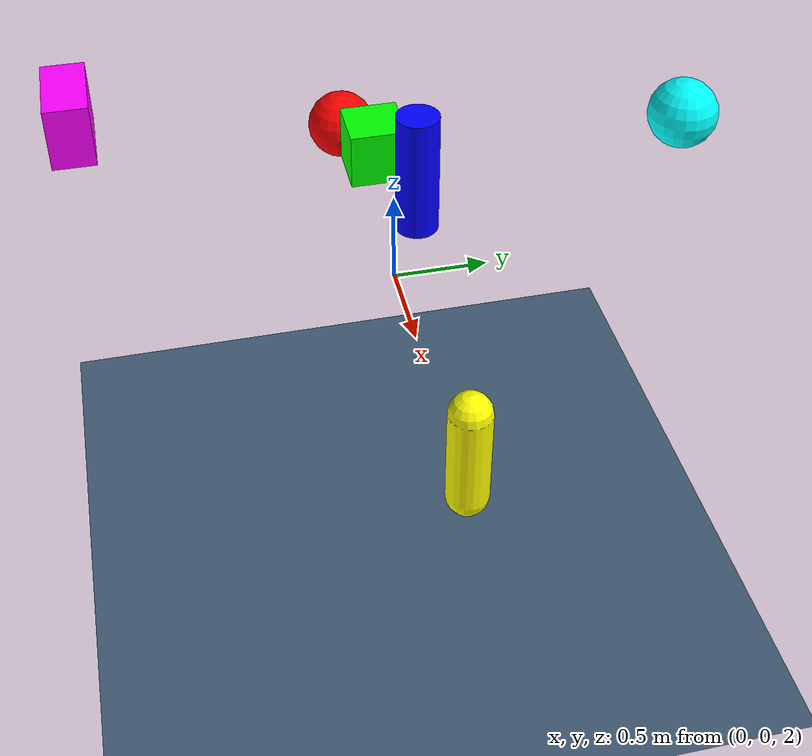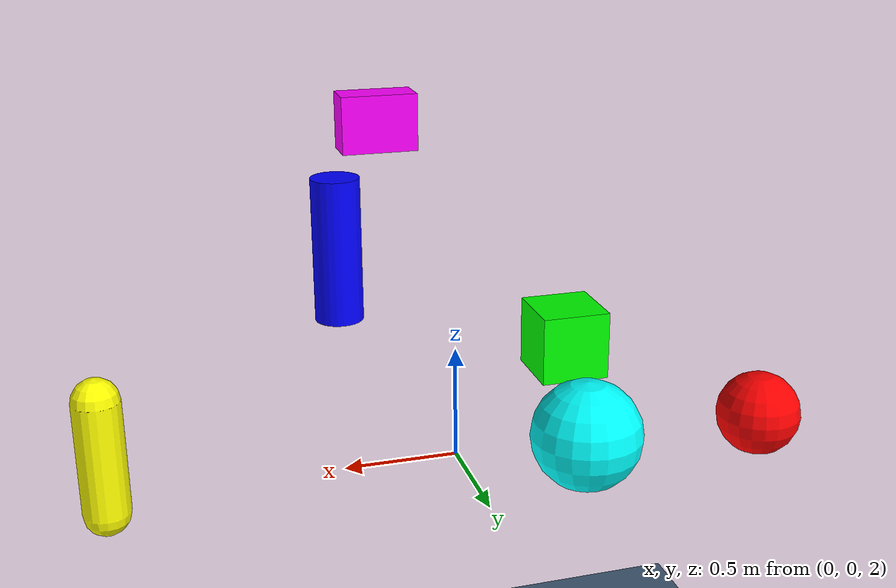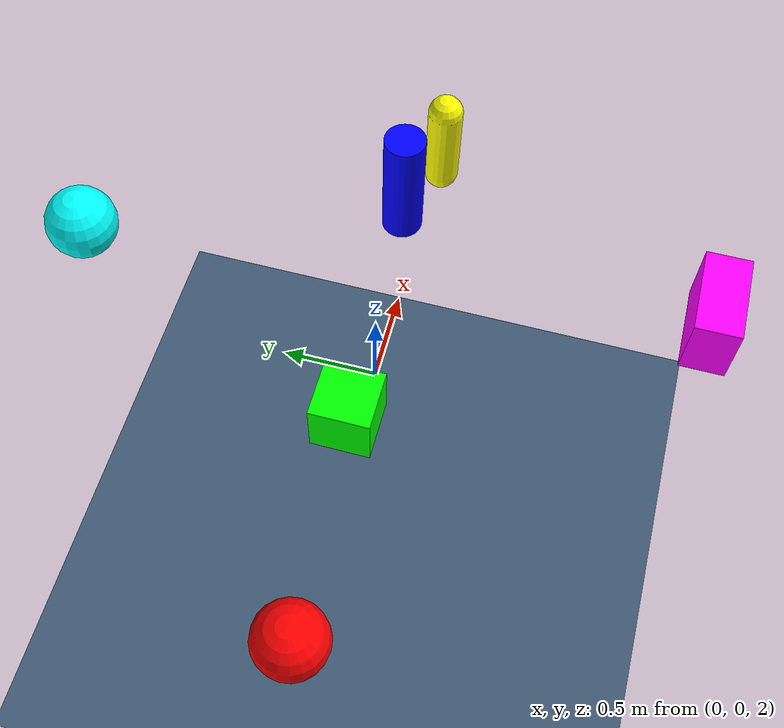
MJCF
<mujoco model="falling_objects">
    <compiler/>
    <option gravity="0 0 -9.81"/>
    <asset>
        <texture builtin="checker" height="512" name="checker" rgb1="0.2 0.3 0.4" rgb2="0.3 0.4 0.5" width="512"/>
        <material name="floor_mat" reflectance="0.1" texrepeat="10 10" texture="checker"/>
    </asset>
    <worldbody>
        <light diffuse="0.8 0.8 0.8" directional="true" pos="0 0 3"/>
        <geom material="floor_mat" name="floor" size="5 5 0.1" type="plane"/>
        <body name="sphere" pos="-1.5 0 2">
            <geom name="sphere_geom" rgba="1 0 0 1" size="0.2 0 0" type="sphere"/>
            <joint name="sphere_joint" type="free"/>
        </body>
        <body name="box" pos="-0.5 0 2.5">
            <geom name="box_geom" rgba="0 1 0 1" size="0.15 0.15 0.15" type="box"/>
            <joint name="box_joint" type="free"/>
        </body>
        <body name="cylinder" pos="0.5 0 3">
            <geom name="cylinder_geom" rgba="0 0 1 1" size="0.1 0.3 0" type="cylinder"/>
            <joint name="cylinder_joint" type="free"/>
        </body>
        <body name="capsule" pos="1.5 0 2.2">
            <geom name="capsule_geom" rgba="1 1 0 1" size="0.1 0.25 0" type="capsule"/>
            <joint name="capsule_joint" type="free"/>
        </body>
        <body name="sphere2" pos="0 1.5 2.8">
            <geom name="sphere2_geom" rgba="0 1 1 1" size="0.18 0 0" type="sphere"/>
            <joint name="sphere2_joint" type="free"/>
        </body>
        <body name="box2" pos="0 -1.5 3.2">
            <geom name="box2_geom" rgba="1 0 1 1" size="0.2 0.1 0.15" type="box"/>
            <joint name="box2_joint" type="free"/>
        </body>
    </worldbody>
    <actuator/>
    <sensor/>
    <contact/>
    <equality/>
    <tendon/>
</mujoco>
